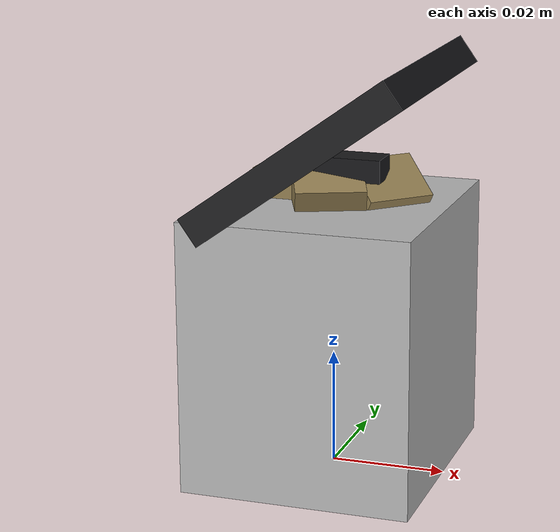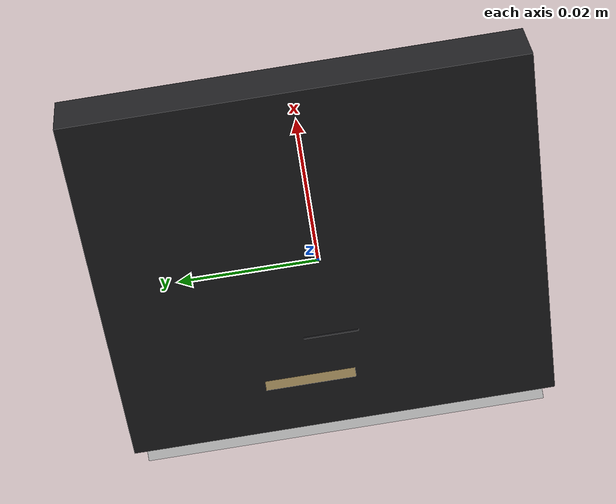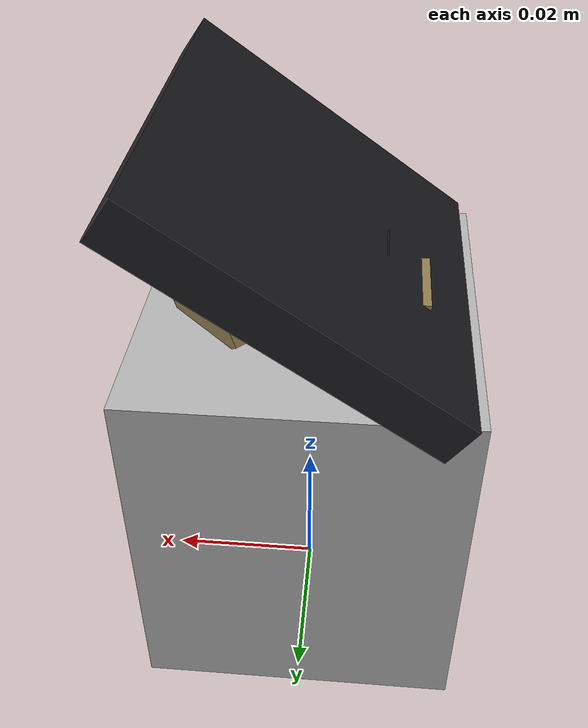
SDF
<?xml version="1.0"?>
<sdf version="1.7">
  <model name="bin_red">
    <static>true</static>
    <link name="link">
<visual name="body"><pose>0 0 0.0237 0 0 0</pose><geometry><box><size>0.0400 0.0450 0.0473</size></box></geometry><material><script><uri>model://bin_red/materials/scripts</uri><uri>model://bin_red/materials/textures</uri><name>Side</name></script></material></visual>
      <collision name="body_c_c"><pose>0 0 0.0237 0 0 0</pose><geometry><box><size>0.0400 0.0450 0.0473</size></box></geometry></collision>
      <visual name="lid"><pose>0.0000 0 0.0583 0 -0.62 0</pose><geometry><box><size>0.0424 0.0477 0.0055</size></box></geometry><material><ambient>0.13 0.13 0.14 1</ambient><diffuse>0.13 0.13 0.14 1</diffuse></material></visual>
      <collision name="lid_c_c"><pose>0.0000 0 0.0583 0 -0.62 0</pose><geometry><box><size>0.0424 0.0477 0.0055</size></box></geometry></collision>
      <visual name="handle"><pose>0 0 0.0534 0 0 0</pose><geometry><box><size>0.0180 0.006 0.004</size></box></geometry><material><ambient>0.10 0.10 0.11 1</ambient><diffuse>0.10 0.10 0.11 1</diffuse></material></visual>
      <visual name="trash0"><pose>-0.008 0.003 0.0484 0.00 0 0.00</pose><geometry><box><size>0.012 0.010 0.008</size></box></geometry><material><ambient>0.58 0.50 0.32 1</ambient><diffuse>0.58 0.50 0.32 1</diffuse></material></visual>
      <visual name="trash1"><pose>0.000 -0.003 0.0484 0.30 0 0.40</pose><geometry><box><size>0.012 0.010 0.008</size></box></geometry><material><ambient>0.58 0.50 0.32 1</ambient><diffuse>0.58 0.50 0.32 1</diffuse></material></visual>
      <visual name="trash2"><pose>0.008 0.003 0.0484 0.60 0 0.80</pose><geometry><box><size>0.012 0.010 0.008</size></box></geometry><material><ambient>0.58 0.50 0.32 1</ambient><diffuse>0.58 0.50 0.32 1</diffuse></material></visual>
    </link>
  </model>
</sdf>
